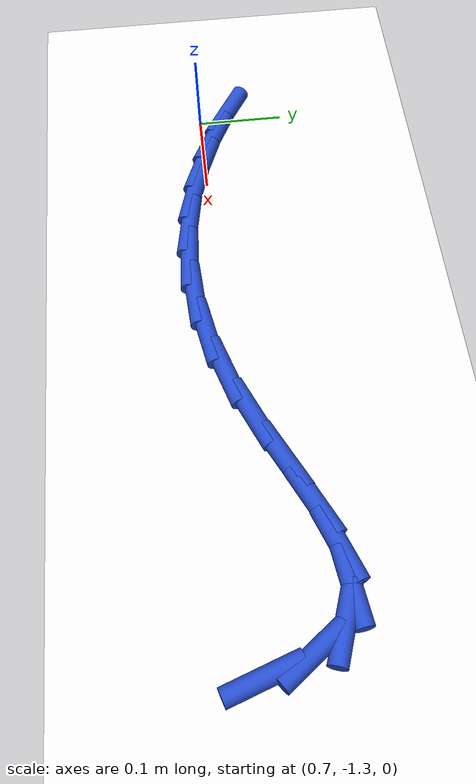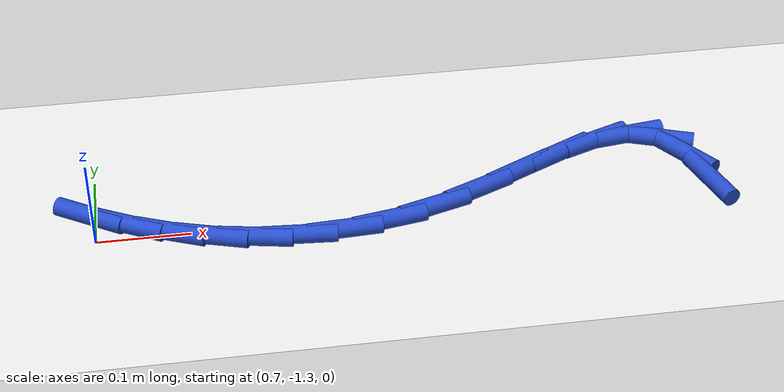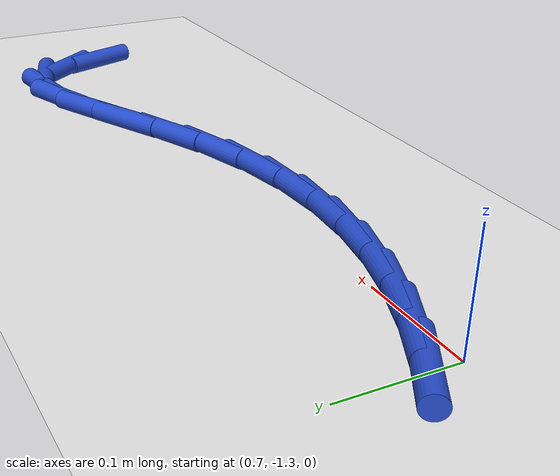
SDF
<sdf version="1.6">
 <world name="default">
  <model name="ground_plane">
   <static>1</static>
   <link name="link">
    <collision name="collision">
     <geometry><plane><normal>0 0 1</normal><size>100 100</size></plane></geometry>
     <surface><friction><ode><mu>100</mu><mu2>50</mu2></ode></friction></surface>
    </collision>
    <visual name="visual">
     <cast_shadows>0</cast_shadows>
     <geometry><plane><normal>0 0 1</normal><size>100 100</size></plane></geometry>
     <material>
      <script><uri>file://media/materials/scripts/gazebo.material</uri><name>Gazebo/WhiteGlow</name></script>
     </material>
    </visual>
   </link>
  </model>
  <model name="line">
   <link name="link_151">
    <pose>1.3649111499793434 -1.2983876890747923 0.01 0 1.57 -1.2526742710490577</pose>
    <collision name="collision">
     <geometry><cylinder><radius>0.01</radius><length>0.08</length></cylinder></geometry>
    </collision>
    <visual name="visual">
     <material>
      <script><name>Gazebo/Blue</name><uri>file://media/materials/scripts/gazebo.material</uri></script>
     </material>
     <geometry><cylinder><radius>0.01</radius><length>0.08</length></cylinder></geometry>
    </visual>
   </link>
   <link name="link_152">
    <pose>1.3495131602322172 -1.2516288526446755 0.01 0 1.57 -0.9414175023927435</pose>
    <collision name="collision">
     <geometry><cylinder><radius>0.01</radius><length>0.08</length></cylinder></geometry>
    </collision>
    <visual name="visual">
     <material>
      <script><name>Gazebo/Blue</name><uri>file://media/materials/scripts/gazebo.material</uri></script>
     </material>
     <geometry><cylinder><radius>0.01</radius><length>0.08</length></cylinder></geometry>
    </visual>
   </link>
   <link name="link_153">
    <pose>1.326304249729745 -1.2197556508875167 0.01 0 1.57 -0.33712271669203814</pose>
    <collision name="collision">
     <geometry><cylinder><radius>0.01</radius><length>0.08</length></cylinder></geometry>
    </collision>
    <visual name="visual">
     <material>
      <script><name>Gazebo/Blue</name><uri>file://media/materials/scripts/gazebo.material</uri></script>
     </material>
     <geometry><cylinder><radius>0.01</radius><length>0.08</length></cylinder></geometry>
    </visual>
   </link>
   <link name="link_154">
    <pose>1.294297467906597 -1.2085371828444462 0.01 0 1.57 0.1342319064605729</pose>
    <collision name="collision">
     <geometry><cylinder><radius>0.01</radius><length>0.08</length></cylinder></geometry>
    </collision>
    <visual name="visual">
     <material>
      <script><name>Gazebo/Blue</name><uri>file://media/materials/scripts/gazebo.material</uri></script>
     </material>
     <geometry><cylinder><radius>0.01</radius><length>0.08</length></cylinder></geometry>
    </visual>
   </link>
   <link name="link_155">
    <pose>1.2550137890062196 -1.2138422066301546 0.01 0 1.57 0.3606278022847931</pose>
    <collision name="collision">
     <geometry><cylinder><radius>0.01</radius><length>0.08</length></cylinder></geometry>
    </collision>
    <visual name="visual">
     <material>
      <script><name>Gazebo/Blue</name><uri>file://media/materials/scripts/gazebo.material</uri></script>
     </material>
     <geometry><cylinder><radius>0.01</radius><length>0.08</length></cylinder></geometry>
    </visual>
   </link>
   <link name="link_156">
    <pose>1.2101735848076474 -1.2307523341198077 0.01 0 1.57 0.45138962859420845</pose>
    <collision name="collision">
     <geometry><cylinder><radius>0.01</radius><length>0.08</length></cylinder></geometry>
    </collision>
    <visual name="visual">
     <material>
      <script><name>Gazebo/Blue</name><uri>file://media/materials/scripts/gazebo.material</uri></script>
     </material>
     <geometry><cylinder><radius>0.01</radius><length>0.08</length></cylinder></geometry>
    </visual>
   </link>
   <link name="link_157">
    <pose>1.1614972270899164 -1.2543491771885704 0.01 0 1.57 0.46316081360968264</pose>
    <collision name="collision">
     <geometry><cylinder><radius>0.01</radius><length>0.08</length></cylinder></geometry>
    </collision>
    <visual name="visual">
     <material>
      <script><name>Gazebo/Blue</name><uri>file://media/materials/scripts/gazebo.material</uri></script>
     </material>
     <geometry><cylinder><radius>0.01</radius><length>0.08</length></cylinder></geometry>
    </visual>
   </link>
   <link name="link_158">
    <pose>1.110705087632063 -1.2797143477116102 0.01 0 1.57 0.409496900435545</pose>
    <collision name="collision">
     <geometry><cylinder><radius>0.01</radius><length>0.08</length></cylinder></geometry>
    </collision>
    <visual name="visual">
     <material>
      <script><name>Gazebo/Blue</name><uri>file://media/materials/scripts/gazebo.material</uri></script>
     </material>
     <geometry><cylinder><radius>0.01</radius><length>0.08</length></cylinder></geometry>
    </visual>
   </link>
   <link name="link_159">
    <pose>1.0595168569381412 -1.301931739183941 0.01 0 1.57 0.29873905767936393</pose>
    <collision name="collision">
     <geometry><cylinder><radius>0.01</radius><length>0.08</length></cylinder></geometry>
    </collision>
    <visual name="visual">
     <material>
      <script><name>Gazebo/Blue</name><uri>file://media/materials/scripts/gazebo.material</uri></script>
     </material>
     <geometry><cylinder><radius>0.01</radius><length>0.08</length></cylinder></geometry>
    </visual>
   </link>
   <link name="link_160">
    <pose>1.0092567862214759 -1.3174095886623705 0.01 0 1.57 0.17533651817731294</pose>
    <collision name="collision">
     <geometry><cylinder><radius>0.01</radius><length>0.08</length></cylinder></geometry>
    </collision>
    <visual name="visual">
     <material>
      <script><name>Gazebo/Blue</name><uri>file://media/materials/scripts/gazebo.material</uri></script>
     </material>
     <geometry><cylinder><radius>0.01</radius><length>0.08</length></cylinder></geometry>
    </visual>
   </link>
   <link name="link_161">
    <pose>0.9601903615215865 -1.3261019842970252 0.01 0 1.57 0.05119171878743451</pose>
    <collision name="collision">
     <geometry><cylinder><radius>0.01</radius><length>0.08</length></cylinder></geometry>
    </collision>
    <visual name="visual">
     <material>
      <script><name>Gazebo/Blue</name><uri>file://media/materials/scripts/gazebo.material</uri></script>
     </material>
     <geometry><cylinder><radius>0.01</radius><length>0.08</length></cylinder></geometry>
    </visual>
   </link>
   <link name="link_162">
    <pose>0.9124077401730982 -1.3285501977753524 0.01 0 1.57 -0.07001660203400448</pose>
    <collision name="collision">
     <geometry><cylinder><radius>0.01</radius><length>0.08</length></cylinder></geometry>
    </collision>
    <visual name="visual">
     <material>
      <script><name>Gazebo/Blue</name><uri>file://media/materials/scripts/gazebo.material</uri></script>
     </material>
     <geometry><cylinder><radius>0.01</radius><length>0.08</length></cylinder></geometry>
    </visual>
   </link>
   <link name="link_163">
    <pose>0.8659990795106357 -1.3252955007847982 0.01 0 1.57 -0.1851165361912049</pose>
    <collision name="collision">
     <geometry><cylinder><radius>0.01</radius><length>0.08</length></cylinder></geometry>
    </collision>
    <visual name="visual">
     <material>
      <script><name>Gazebo/Blue</name><uri>file://media/materials/scripts/gazebo.material</uri></script>
     </material>
     <geometry><cylinder><radius>0.01</radius><length>0.08</length></cylinder></geometry>
    </visual>
   </link>
   <link name="link_164">
    <pose>0.8210545368688227 -1.3168791650128069 0.01 0 1.57 -0.29187163905845803</pose>
    <collision name="collision">
     <geometry><cylinder><radius>0.01</radius><length>0.08</length></cylinder></geometry>
    </collision>
    <visual name="visual">
     <material>
      <script><name>Gazebo/Blue</name><uri>file://media/materials/scripts/gazebo.material</uri></script>
     </material>
     <geometry><cylinder><radius>0.01</radius><length>0.08</length></cylinder></geometry>
    </visual>
   </link>
   <link name="link_165">
    <pose>0.7776642695822842 -1.3038424621468256 0.01 0 1.57 -0.38909735590123334</pose>
    <collision name="collision">
     <geometry><cylinder><radius>0.01</radius><length>0.08</length></cylinder></geometry>
    </collision>
    <visual name="visual">
     <material>
      <script><name>Gazebo/Blue</name><uri>file://media/materials/scripts/gazebo.material</uri></script>
     </material>
     <geometry><cylinder><radius>0.01</radius><length>0.08</length></cylinder></geometry>
    </visual>
   </link>
   <link name="link_166">
    <pose>0.735918434985645 -1.2867266638743013 0.01 0 1.57 -0.4765198566036961</pose>
    <collision name="collision">
     <geometry><cylinder><radius>0.01</radius><length>0.08</length></cylinder></geometry>
    </collision>
    <visual name="visual">
     <material>
      <script><name>Gazebo/Blue</name><uri>file://media/materials/scripts/gazebo.material</uri></script>
     </material>
     <geometry><cylinder><radius>0.01</radius><length>0.08</length></cylinder></geometry>
    </visual>
   </link>
   <link name="link_167">
    <pose>0.6959071904135298 -1.2660730418826784 0.01 0 1.57 -0.5545140918231426</pose>
    <collision name="collision">
     <geometry><cylinder><radius>0.01</radius><length>0.08</length></cylinder></geometry>
    </collision>
    <visual name="visual">
     <material>
      <script><name>Gazebo/Blue</name><uri>file://media/materials/scripts/gazebo.material</uri></script>
     </material>
     <geometry><cylinder><radius>0.01</radius><length>0.08</length></cylinder></geometry>
    </visual>
   </link>
  </model>
 </world>
</sdf>
